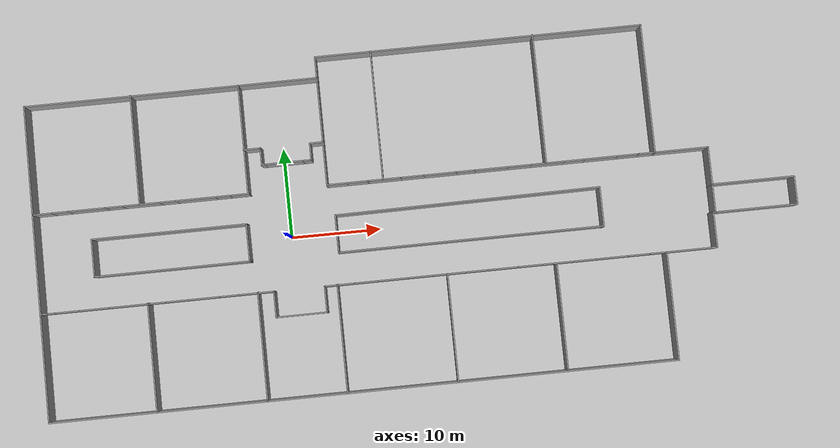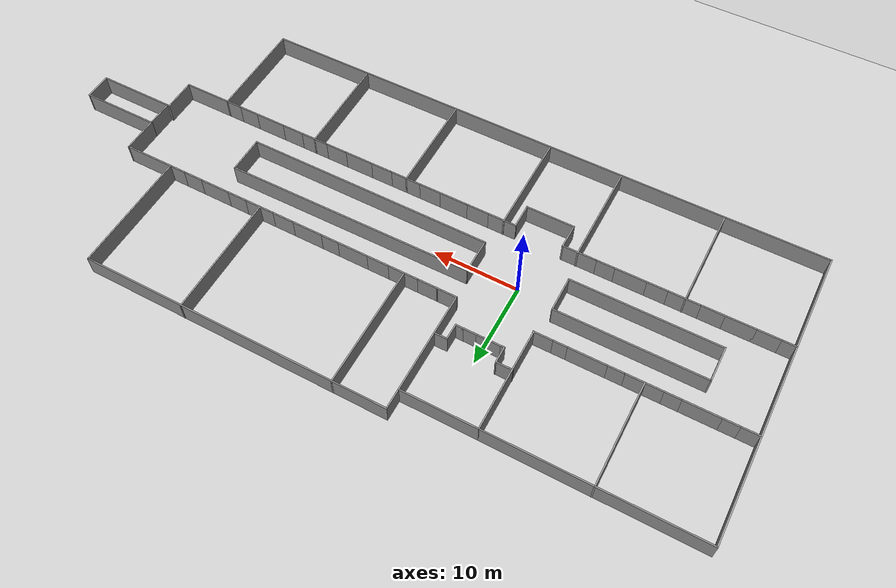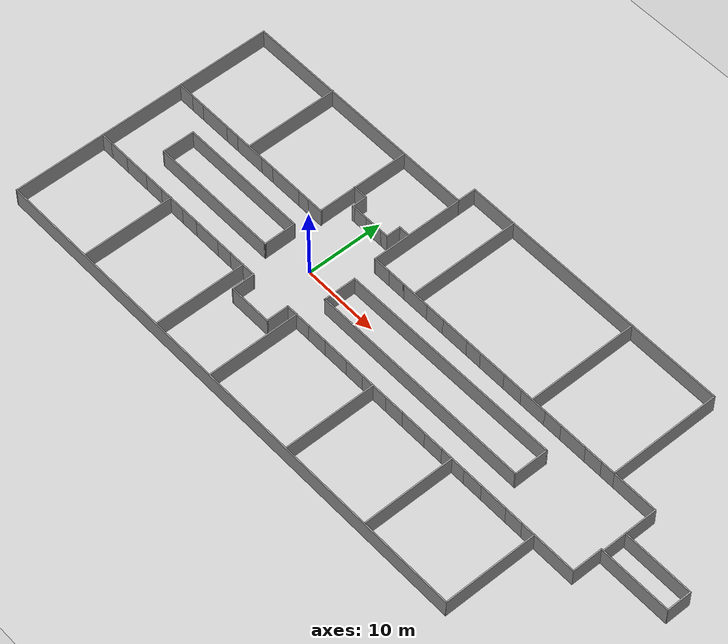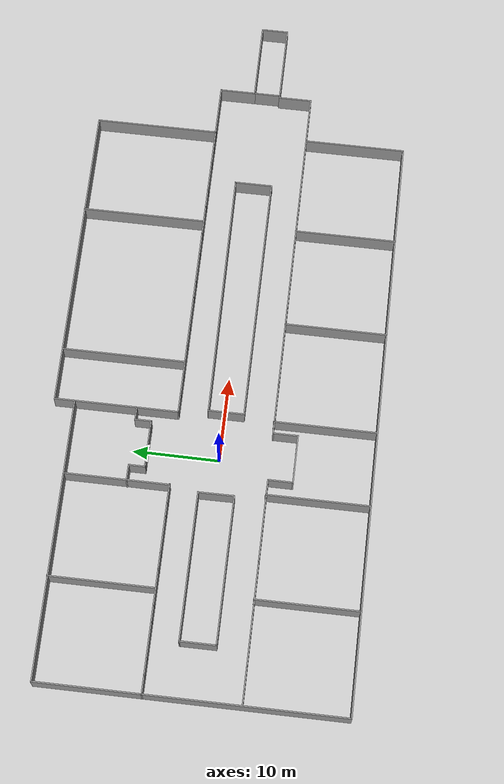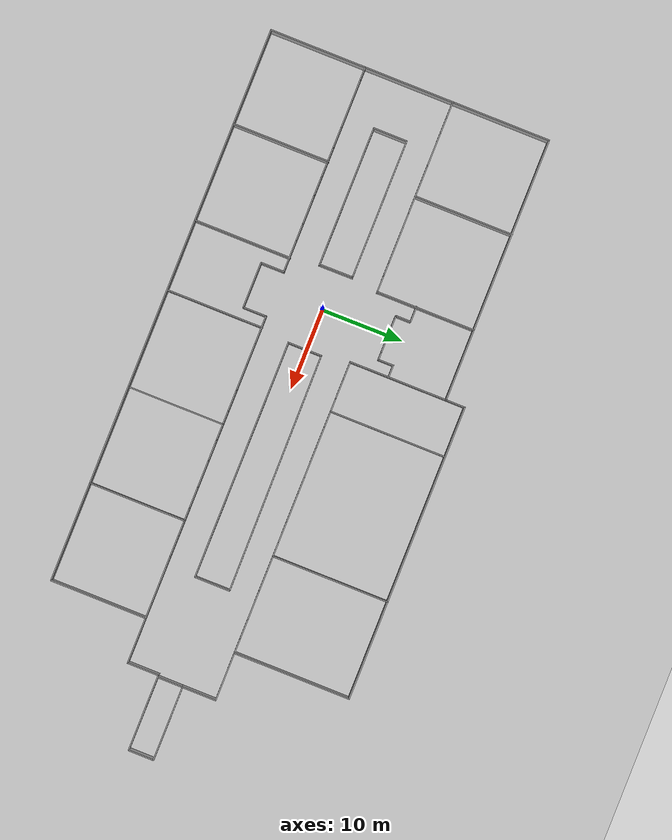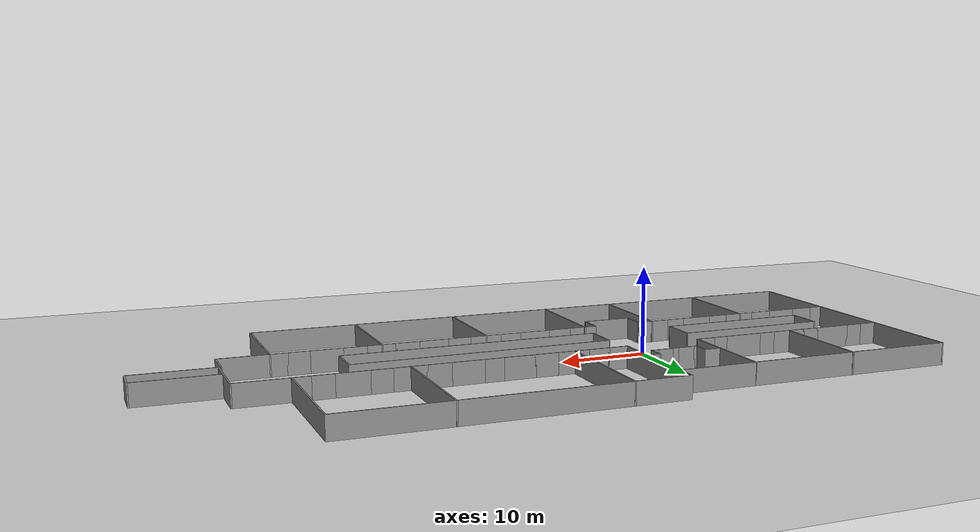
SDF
<sdf version="1.7">
 <world name="default">
  <light name="sun" type="directional">
   <pose>0 0 10 0 -0 0</pose>
   <diffuse>0.8 0.8 0.8 1</diffuse>
   <specular>0.2 0.2 0.2 1</specular>
   <attenuation>
    <range>1000</range>
    <constant>0.9</constant>
    <linear>0.01</linear>
    <quadratic>0.001</quadratic>
   </attenuation>
   <direction>-0.5 0.1 -0.9</direction>
   <spot><inner_angle>0</inner_angle><outer_angle>0</outer_angle><falloff>0</falloff></spot>
  </light>
  <model name="ground_plane">
   <static>1</static>
   <link name="link">
    <collision name="collision">
     <geometry><plane><normal>0 0 1</normal><size>100 100</size></plane></geometry>
     <surface><friction><ode><mu>100</mu><mu2>50</mu2></ode></friction></surface>
    </collision>
    <visual name="visual">
     <cast_shadows>0</cast_shadows>
     <geometry><plane><normal>0 0 1</normal><size>100 100</size></plane></geometry>
     <material>
      <script><uri>file://media/materials/scripts/gazebo.material</uri><name>Gazebo/Grey</name></script>
     </material>
    </visual>
   </link>
  </model>
  <gravity>0 0 -9.8</gravity>
  <magnetic_field>6e-06 2.3e-05 -4.2e-05</magnetic_field>
  <atmosphere type="adiabatic"/>
  <physics type="ode">
   <max_step_size>0.001</max_step_size>
   <real_time_factor>1</real_time_factor>
   <real_time_update_rate>1000</real_time_update_rate>
  </physics>
  <scene><ambient>0.4 0.4 0.4 1</ambient><background>0.7 0.7 0.7 1</background><shadows>1</shadows></scene>
  <audio><device>default</device></audio>
  <spherical_coordinates>
   <surface_model>EARTH_WGS84</surface_model>
   <latitude_deg>0</latitude_deg>
   <longitude_deg>0</longitude_deg>
   <elevation>0</elevation>
   <heading_deg>0</heading_deg>
  </spherical_coordinates>
  <model name="302_3f_hallway_c">
   <pose>14 1 0 0 -0 0</pose>
   <link name="Wall_0">
    <collision name="Wall_0_Collision">
     <geometry><box><size>2.25 0.15 2.5</size></box></geometry>
     <pose>0 0 1.25 0 -0 0</pose>
    </collision>
    <visual name="Wall_0_Visual">
     <pose>0 0 1.25 0 -0 0</pose>
     <geometry><box><size>2.25 0.15 2.5</size></box></geometry>
     <material>
      <script><uri>file://media/materials/scripts/gazebo.material</uri><name>Gazebo/Grey</name></script>
      <ambient>1 1 1 1</ambient>
     </material>
     <meta><layer>0</layer></meta>
    </visual>
    <pose>-19.175 4.17518 0 0 -0 3.14159</pose>
   </link>
   <link name="Wall_1">
    <collision name="Wall_1_Collision">
     <geometry><box><size>1.75 0.15 2.5</size></box></geometry>
     <pose>0 0 1.25 0 -0 0</pose>
    </collision>
    <visual name="Wall_1_Visual">
     <pose>0 0 1.25 0 -0 0</pose>
     <geometry><box><size>1.75 0.15 2.5</size></box></geometry>
     <material>
      <script><uri>file://media/materials/scripts/gazebo.material</uri><name>Gazebo/Grey</name></script>
      <ambient>1 1 1 1</ambient>
     </material>
     <meta><layer>0</layer></meta>
    </visual>
    <pose>-21.025 4.17518 0 0 -0 3.14159</pose>
   </link>
   <link name="Wall_10">
    <collision name="Wall_10_Collision">
     <geometry><box><size>24 0.15 2.5</size></box></geometry>
     <pose>0 0 1.25 0 -0 0</pose>
    </collision>
    <visual name="Wall_10_Visual">
     <pose>0 0 1.25 0 -0 0</pose>
     <geometry><box><size>24 0.15 2.5</size></box></geometry>
     <material>
      <script><uri>file://media/materials/scripts/gazebo.material</uri><name>Gazebo/Grey</name></script>
      <ambient>1 1 1 1</ambient>
     </material>
     <meta><layer>0</layer></meta>
    </visual>
    <pose>-30.1 16.2752 0 0 -0 0</pose>
   </link>
   <link name="Wall_100">
    <collision name="Wall_100_Collision">
     <geometry><box><size>2 0.15 2.5</size></box></geometry>
     <pose>0 0 1.25 0 -0 0</pose>
    </collision>
    <visual name="Wall_100_Visual">
     <pose>0 0 1.25 0 -0 0</pose>
     <geometry><box><size>2 0.15 2.5</size></box></geometry>
     <material>
      <script><uri>file://media/materials/scripts/gazebo.material</uri><name>Gazebo/Grey</name></script>
      <ambient>1 1 1 1</ambient>
     </material>
     <meta><layer>0</layer></meta>
    </visual>
    <pose>-10.8738 8.1512 0 0 -0 1.5708</pose>
   </link>
   <link name="Wall_101">
    <collision name="Wall_101_Collision">
     <geometry><box><size>1.5 0.15 2.5</size></box></geometry>
     <pose>0 0 1.25 0 -0 0</pose>
    </collision>
    <visual name="Wall_101_Visual">
     <pose>0 0 1.25 0 -0 0</pose>
     <geometry><box><size>1.5 0.15 2.5</size></box></geometry>
     <material>
      <script><uri>file://media/materials/scripts/gazebo.material</uri><name>Gazebo/Grey</name></script>
      <ambient>1 1 1 1</ambient>
     </material>
     <meta><layer>0</layer></meta>
    </visual>
    <pose>-10.1988 9.0762 0 0 -0 0</pose>
   </link>
   <link name="Wall_105">
    <collision name="Wall_105_Collision">
     <geometry><box><size>4.26858 0.15 2.5</size></box></geometry>
     <pose>0 0 1.25 0 -0 0</pose>
    </collision>
    <visual name="Wall_105_Visual">
     <pose>0 0 1.25 0 -0 0</pose>
     <geometry><box><size>4.26858 0.15 2.5</size></box></geometry>
     <material>
      <script><uri>file://media/materials/scripts/gazebo.material</uri><name>Gazebo/Grey</name></script>
      <ambient>1 1 1 1</ambient>
     </material>
     <meta><layer>0</layer></meta>
    </visual>
    <pose>-35.784 -1.20336 0 0 -0 -1.5708</pose>
   </link>
   <link name="Wall_106">
    <collision name="Wall_106_Collision">
     <geometry><box><size>17.25 0.15 2.5</size></box></geometry>
     <pose>0 0 1.25 0 -0 0</pose>
    </collision>
    <visual name="Wall_106_Visual">
     <pose>0 0 1.25 0 -0 0</pose>
     <geometry><box><size>17.25 0.15 2.5</size></box></geometry>
     <material>
      <script><uri>file://media/materials/scripts/gazebo.material</uri><name>Gazebo/Grey</name></script>
      <ambient>1 1 1 1</ambient>
     </material>
     <meta><layer>0</layer></meta>
    </visual>
    <pose>-27.2042 -3.2626 0 0 -0 0</pose>
   </link>
   <link name="Wall_109">
    <collision name="Wall_109_Collision">
     <geometry><box><size>17.25 0.15 2.5</size></box></geometry>
     <pose>0 0 1.25 0 -0 0</pose>
    </collision>
    <visual name="Wall_109_Visual">
     <pose>0 0 1.25 0 -0 0</pose>
     <geometry><box><size>17.25 0.15 2.5</size></box></geometry>
     <material>
      <script><uri>file://media/materials/scripts/gazebo.material</uri><name>Gazebo/Grey</name></script>
      <ambient>1 1 1 1</ambient>
     </material>
     <meta><layer>0</layer></meta>
    </visual>
    <pose>-27.234 0.855878 0 0 -0 0</pose>
   </link>
   <link name="Wall_11">
    <collision name="Wall_11_Collision">
     <geometry><box><size>12.25 0.15 2.5</size></box></geometry>
     <pose>0 0 1.25 0 -0 0</pose>
    </collision>
    <visual name="Wall_11_Visual">
     <pose>0 0 1.25 0 -0 0</pose>
     <geometry><box><size>12.25 0.15 2.5</size></box></geometry>
     <material>
      <script><uri>file://media/materials/scripts/gazebo.material</uri><name>Gazebo/Grey</name></script>
      <ambient>1 1 1 1</ambient>
     </material>
     <meta><layer>0</layer></meta>
    </visual>
    <pose>-18.175 10.2252 0 0 -0 -1.5708</pose>
   </link>
   <link name="Wall_110">
    <collision name="Wall_110_Collision">
     <geometry><box><size>4.26858 0.15 2.5</size></box></geometry>
     <pose>0 0 1.25 0 -0 0</pose>
    </collision>
    <visual name="Wall_110_Visual">
     <pose>0 0 1.25 0 -0 0</pose>
     <geometry><box><size>4.26858 0.15 2.5</size></box></geometry>
     <material>
      <script><uri>file://media/materials/scripts/gazebo.material</uri><name>Gazebo/Grey</name></script>
      <ambient>1 1 1 1</ambient>
     </material>
     <meta><layer>0</layer></meta>
    </visual>
    <pose>-18.6691 -1.20336 0 0 -0 -1.56355</pose>
   </link>
   <link name="Wall_113">
    <collision name="Wall_113_Collision">
     <geometry><box><size>29.5 0.15 2.5</size></box></geometry>
     <pose>0 0 1.25 0 -0 0</pose>
    </collision>
    <visual name="Wall_113_Visual">
     <pose>0 0 1.25 0 -0 0</pose>
     <geometry><box><size>29.5 0.15 2.5</size></box></geometry>
     <material>
      <script><uri>file://media/materials/scripts/gazebo.material</uri><name>Gazebo/Grey</name></script>
      <ambient>1 1 1 1</ambient>
     </material>
     <meta><layer>0</layer></meta>
    </visual>
    <pose>5.84097 0.961874 0 0 -0 0.007223</pose>
   </link>
   <link name="Wall_114">
    <collision name="Wall_114_Collision">
     <geometry><box><size>4.5 0.15 2.5</size></box></geometry>
     <pose>0 0 1.25 0 -0 0</pose>
    </collision>
    <visual name="Wall_114_Visual">
     <pose>0 0 1.25 0 -0 0</pose>
     <geometry><box><size>4.5 0.15 2.5</size></box></geometry>
     <material>
      <script><uri>file://media/materials/scripts/gazebo.material</uri><name>Gazebo/Grey</name></script>
      <ambient>1 1 1 1</ambient>
     </material>
     <meta><layer>0</layer></meta>
    </visual>
    <pose>20.516 -1.11561 0 0 -0 -1.5708</pose>
   </link>
   <link name="Wall_118">
    <collision name="Wall_118_Collision">
     <geometry><box><size>29.5 0.15 2.5</size></box></geometry>
     <pose>0 0 1.25 0 -0 0</pose>
    </collision>
    <visual name="Wall_118_Visual">
     <pose>0 0 1.25 0 -0 0</pose>
     <geometry><box><size>29.5 0.15 2.5</size></box></geometry>
     <material>
      <script><uri>file://media/materials/scripts/gazebo.material</uri><name>Gazebo/Grey</name></script>
      <ambient>1 1 1 1</ambient>
     </material>
     <meta><layer>0</layer></meta>
    </visual>
    <pose>5.84097 -3.2626 0 0 -0 0</pose>
   </link>
   <link name="Wall_120">
    <collision name="Wall_120_Collision">
     <geometry><box><size>4.26847 0.15 2.5</size></box></geometry>
     <pose>0 0 1.25 0 -0 0</pose>
    </collision>
    <visual name="Wall_120_Visual">
     <pose>0 0 1.25 0 -0 0</pose>
     <geometry><box><size>4.26847 0.15 2.5</size></box></geometry>
     <material>
      <script><uri>file://media/materials/scripts/gazebo.material</uri><name>Gazebo/Grey</name></script>
      <ambient>1 1 1 1</ambient>
     </material>
     <meta><layer>0</layer></meta>
    </visual>
    <pose>-8.83403 -1.20336 0 0 -0 -1.5708</pose>
   </link>
   <link name="Wall_13">
    <collision name="Wall_13_Collision">
     <geometry><box><size>8.91051 0.15 2.5</size></box></geometry>
     <pose>0 0 1.25 0 -0 0</pose>
    </collision>
    <visual name="Wall_13_Visual">
     <pose>0 0 1.25 0 -0 0</pose>
     <geometry><box><size>8.91051 0.15 2.5</size></box></geometry>
     <material>
      <script><uri>file://media/materials/scripts/gazebo.material</uri><name>Gazebo/Grey</name></script>
      <ambient>1 1 1 1</ambient>
     </material>
     <meta><layer>0</layer></meta>
    </visual>
    <pose>-13.7946 16.2804 0 0 -0 0.001183</pose>
   </link>
   <link name="Wall_14">
    <collision name="Wall_14_Collision">
     <geometry><box><size>2.49 0.15 2.5</size></box></geometry>
     <pose>0 0 1.25 0 -0 0</pose>
    </collision>
    <visual name="Wall_14_Visual">
     <pose>0 0 1.25 0 -0 0</pose>
     <geometry><box><size>2.49 0.15 2.5</size></box></geometry>
     <material>
      <script><uri>file://media/materials/scripts/gazebo.material</uri><name>Gazebo/Grey</name></script>
      <ambient>1 1 1 1</ambient>
     </material>
     <meta><layer>0</layer></meta>
    </visual>
    <pose>-9.41421 17.4555 0 0 -0 1.5708</pose>
   </link>
   <link name="Wall_15">
    <collision name="Wall_15_Collision">
     <geometry><box><size>36.5892 0.15 2.5</size></box></geometry>
     <pose>0 0 1.25 0 -0 0</pose>
    </collision>
    <visual name="Wall_15_Visual">
     <pose>0 0 1.25 0 -0 0</pose>
     <geometry><box><size>36.5892 0.15 2.5</size></box></geometry>
     <material>
      <script><uri>file://media/materials/scripts/gazebo.material</uri><name>Gazebo/Grey</name></script>
      <ambient>1 1 1 1</ambient>
     </material>
     <meta><layer>0</layer></meta>
    </visual>
    <pose>8.80539 18.6254 0 0 -0 -1e-05</pose>
   </link>
   <link name="Wall_16">
    <collision name="Wall_16_Collision">
     <geometry><box><size>14.5 0.15 2.5</size></box></geometry>
     <pose>0 0 1.25 0 -0 0</pose>
    </collision>
    <visual name="Wall_16_Visual">
     <pose>0 0 1.25 0 -0 0</pose>
     <geometry><box><size>14.5 0.15 2.5</size></box></geometry>
     <material>
      <script><uri>file://media/materials/scripts/gazebo.material</uri><name>Gazebo/Grey</name></script>
      <ambient>1 1 1 1</ambient>
     </material>
     <meta><layer>0</layer></meta>
    </visual>
    <pose>27.025 11.4502 0 0 -0 -1.5708</pose>
   </link>
   <link name="Wall_17">
    <collision name="Wall_17_Collision">
     <geometry><box><size>2 0.15 2.5</size></box></geometry>
     <pose>0 0 1.25 0 -0 0</pose>
    </collision>
    <visual name="Wall_17_Visual">
     <pose>0 0 1.25 0 -0 0</pose>
     <geometry><box><size>2 0.15 2.5</size></box></geometry>
     <material>
      <script><uri>file://media/materials/scripts/gazebo.material</uri><name>Gazebo/Grey</name></script>
      <ambient>1 1 1 1</ambient>
     </material>
     <meta><layer>0</layer></meta>
    </visual>
    <pose>26.1 4.27518 0 0 -0 3.14159</pose>
   </link>
   <link name="Wall_18">
    <collision name="Wall_18_Collision">
     <geometry><box><size>2.5 0.15 2.5</size></box></geometry>
     <pose>0 0 1.25 0 -0 0</pose>
    </collision>
    <visual name="Wall_18_Visual">
     <pose>0 0 1.25 0 -0 0</pose>
     <geometry><box><size>2.5 0.15 2.5</size></box></geometry>
     <material>
      <script><uri>file://media/materials/scripts/gazebo.material</uri><name>Gazebo/Grey</name></script>
      <ambient>1 1 1 1</ambient>
     </material>
     <meta><layer>0</layer></meta>
    </visual>
    <pose>24 4.27518 0 0 -0 3.14159</pose>
   </link>
   <link name="Wall_19">
    <collision name="Wall_19_Collision">
     <geometry><box><size>3.75 0.15 2.5</size></box></geometry>
     <pose>0 0 1.25 0 -0 0</pose>
    </collision>
    <visual name="Wall_19_Visual">
     <pose>0 0 1.25 0 -0 0</pose>
     <geometry><box><size>3.75 0.15 2.5</size></box></geometry>
     <material>
      <script><uri>file://media/materials/scripts/gazebo.material</uri><name>Gazebo/Grey</name></script>
      <ambient>1 1 1 1</ambient>
     </material>
     <meta><layer>0</layer></meta>
    </visual>
    <pose>21.025 4.27518 0 0 -0 3.14159</pose>
   </link>
   <link name="Wall_2">
    <collision name="Wall_2_Collision">
     <geometry><box><size>4.5 0.15 2.5</size></box></geometry>
     <pose>0 0 1.25 0 -0 0</pose>
    </collision>
    <visual name="Wall_2_Visual">
     <pose>0 0 1.25 0 -0 0</pose>
     <geometry><box><size>4.5 0.15 2.5</size></box></geometry>
     <material>
      <script><uri>file://media/materials/scripts/gazebo.material</uri><name>Gazebo/Grey</name></script>
      <ambient>1 1 1 1</ambient>
     </material>
     <meta><layer>0</layer></meta>
    </visual>
    <pose>-24 4.17518 0 0 -0 3.14159</pose>
   </link>
   <link name="Wall_20">
    <collision name="Wall_20_Collision">
     <geometry><box><size>2.5 0.15 2.5</size></box></geometry>
     <pose>0 0 1.25 0 -0 0</pose>
    </collision>
    <visual name="Wall_20_Visual">
     <pose>0 0 1.25 0 -0 0</pose>
     <geometry><box><size>2.5 0.15 2.5</size></box></geometry>
     <material>
      <script><uri>file://media/materials/scripts/gazebo.material</uri><name>Gazebo/Grey</name></script>
      <ambient>1 1 1 1</ambient>
     </material>
     <meta><layer>0</layer></meta>
    </visual>
    <pose>18.05 4.27518 0 0 -0 3.14159</pose>
   </link>
   <link name="Wall_21">
    <collision name="Wall_21_Collision">
     <geometry><box><size>3.75 0.15 2.5</size></box></geometry>
     <pose>0 0 1.25 0 -0 0</pose>
    </collision>
    <visual name="Wall_21_Visual">
     <pose>0 0 1.25 0 -0 0</pose>
     <geometry><box><size>3.75 0.15 2.5</size></box></geometry>
     <material>
      <script><uri>file://media/materials/scripts/gazebo.material</uri><name>Gazebo/Grey</name></script>
      <ambient>1 1 1 1</ambient>
     </material>
     <meta><layer>0</layer></meta>
    </visual>
    <pose>15.075 4.27518 0 0 -0 3.14159</pose>
   </link>
   <link name="Wall_22">
    <collision name="Wall_22_Collision">
     <geometry><box><size>2.75 0.15 2.5</size></box></geometry>
     <pose>0 0 1.25 0 -0 0</pose>
    </collision>
    <visual name="Wall_22_Visual">
     <pose>0 0 1.25 0 -0 0</pose>
     <geometry><box><size>2.75 0.15 2.5</size></box></geometry>
     <material>
      <script><uri>file://media/materials/scripts/gazebo.material</uri><name>Gazebo/Grey</name></script>
      <ambient>1 1 1 1</ambient>
     </material>
     <meta><layer>0</layer></meta>
    </visual>
    <pose>11.975 4.27518 0 0 -0 3.14159</pose>
   </link>
   <link name="Wall_23">
    <collision name="Wall_23_Collision">
     <geometry><box><size>3.75 0.15 2.5</size></box></geometry>
     <pose>0 0 1.25 0 -0 0</pose>
    </collision>
    <visual name="Wall_23_Visual">
     <pose>0 0 1.25 0 -0 0</pose>
     <geometry><box><size>3.75 0.15 2.5</size></box></geometry>
     <material>
      <script><uri>file://media/materials/scripts/gazebo.material</uri><name>Gazebo/Grey</name></script>
      <ambient>1 1 1 1</ambient>
     </material>
     <meta><layer>0</layer></meta>
    </visual>
    <pose>8.875 4.27518 0 0 -0 3.14159</pose>
   </link>
   <link name="Wall_24">
    <collision name="Wall_24_Collision">
     <geometry><box><size>2.25 0.15 2.5</size></box></geometry>
     <pose>0 0 1.25 0 -0 0</pose>
    </collision>
    <visual name="Wall_24_Visual">
     <pose>0 0 1.25 0 -0 0</pose>
     <geometry><box><size>2.25 0.15 2.5</size></box></geometry>
     <material>
      <script><uri>file://media/materials/scripts/gazebo.material</uri><name>Gazebo/Grey</name></script>
      <ambient>1 1 1 1</ambient>
     </material>
     <meta><layer>0</layer></meta>
    </visual>
    <pose>6.025 4.27518 0 0 -0 3.14159</pose>
   </link>
   <link name="Wall_25">
    <collision name="Wall_25_Collision">
     <geometry><box><size>3.75 0.15 2.5</size></box></geometry>
     <pose>0 0 1.25 0 -0 0</pose>
    </collision>
    <visual name="Wall_25_Visual">
     <pose>0 0 1.25 0 -0 0</pose>
     <geometry><box><size>3.75 0.15 2.5</size></box></geometry>
     <material>
      <script><uri>file://media/materials/scripts/gazebo.material</uri><name>Gazebo/Grey</name></script>
      <ambient>1 1 1 1</ambient>
     </material>
     <meta><layer>0</layer></meta>
    </visual>
    <pose>3.175 4.27518 0 0 -0 3.14159</pose>
   </link>
   <link name="Wall_26">
    <collision name="Wall_26_Collision">
     <geometry><box><size>2.75 0.15 2.5</size></box></geometry>
     <pose>0 0 1.25 0 -0 0</pose>
    </collision>
    <visual name="Wall_26_Visual">
     <pose>0 0 1.25 0 -0 0</pose>
     <geometry><box><size>2.75 0.15 2.5</size></box></geometry>
     <material>
      <script><uri>file://media/materials/scripts/gazebo.material</uri><name>Gazebo/Grey</name></script>
      <ambient>1 1 1 1</ambient>
     </material>
     <meta><layer>0</layer></meta>
    </visual>
    <pose>0.075 4.27518 0 0 -0 3.14159</pose>
   </link>
   <link name="Wall_27">
    <collision name="Wall_27_Collision">
     <geometry><box><size>3.75 0.15 2.5</size></box></geometry>
     <pose>0 0 1.25 0 -0 0</pose>
    </collision>
    <visual name="Wall_27_Visual">
     <pose>0 0 1.25 0 -0 0</pose>
     <geometry><box><size>3.75 0.15 2.5</size></box></geometry>
     <material>
      <script><uri>file://media/materials/scripts/gazebo.material</uri><name>Gazebo/Grey</name></script>
      <ambient>1 1 1 1</ambient>
     </material>
     <meta><layer>0</layer></meta>
    </visual>
    <pose>-3.025 4.27518 0 0 -0 3.14159</pose>
   </link>
   <link name="Wall_28">
    <collision name="Wall_28_Collision">
     <geometry><box><size>2.5 0.15 2.5</size></box></geometry>
     <pose>0 0 1.25 0 -0 0</pose>
    </collision>
    <visual name="Wall_28_Visual">
     <pose>0 0 1.25 0 -0 0</pose>
     <geometry><box><size>2.5 0.15 2.5</size></box></geometry>
     <material>
      <script><uri>file://media/materials/scripts/gazebo.material</uri><name>Gazebo/Grey</name></script>
      <ambient>1 1 1 1</ambient>
     </material>
     <meta><layer>0</layer></meta>
    </visual>
    <pose>-6.00011 4.27536 0 0 -0 3.14144</pose>
   </link>
   <link name="Wall_3">
    <collision name="Wall_3_Collision">
     <geometry><box><size>2 0.15 2.5</size></box></geometry>
     <pose>0 0 1.25 0 -0 0</pose>
    </collision>
    <visual name="Wall_3_Visual">
     <pose>0 0 1.25 0 -0 0</pose>
     <geometry><box><size>2 0.15 2.5</size></box></geometry>
     <material>
      <script><uri>file://media/materials/scripts/gazebo.material</uri><name>Gazebo/Grey</name></script>
      <ambient>1 1 1 1</ambient>
     </material>
     <meta><layer>0</layer></meta>
    </visual>
    <pose>-27.1 4.17518 0 0 -0 3.14159</pose>
   </link>
   <link name="Wall_32">
    <collision name="Wall_32_Collision">
     <geometry><box><size>2.38924 0.15 2.5</size></box></geometry>
     <pose>0 0 1.25 0 -0 0</pose>
    </collision>
    <visual name="Wall_32_Visual">
     <pose>0 0 1.25 0 -0 0</pose>
     <geometry><box><size>2.38924 0.15 2.5</size></box></geometry>
     <material>
      <script><uri>file://media/materials/scripts/gazebo.material</uri><name>Gazebo/Grey</name></script>
      <ambient>1 1 1 1</ambient>
     </material>
     <meta><layer>0</layer></meta>
    </visual>
    <pose>-8.29471 4.27554 0 0 -0 3.14159</pose>
   </link>
   <link name="Wall_33">
    <collision name="Wall_33_Collision">
     <geometry><box><size>12.16 0.15 2.5</size></box></geometry>
     <pose>0 0 1.25 0 -0 0</pose>
    </collision>
    <visual name="Wall_33_Visual">
     <pose>0 0 1.25 0 -0 0</pose>
     <geometry><box><size>12.16 0.15 2.5</size></box></geometry>
     <material>
      <script><uri>file://media/materials/scripts/gazebo.material</uri><name>Gazebo/Grey</name></script>
      <ambient>1 1 1 1</ambient>
     </material>
     <meta><layer>0</layer></meta>
    </visual>
    <pose>-9.41421 10.2805 0 0 -0 1.5708</pose>
   </link>
   <link name="Wall_36">
    <collision name="Wall_36_Collision">
     <geometry><box><size>14.5 0.15 2.5</size></box></geometry>
     <pose>0 0 1.25 0 -0 0</pose>
    </collision>
    <visual name="Wall_36_Visual">
     <pose>0 0 1.25 0 -0 0</pose>
     <geometry><box><size>14.5 0.15 2.5</size></box></geometry>
     <material>
      <script><uri>file://media/materials/scripts/gazebo.material</uri><name>Gazebo/Grey</name></script>
      <ambient>1 1 1 1</ambient>
     </material>
     <meta><layer>0</layer></meta>
    </visual>
    <pose>-3.20664 11.4573 0 0 -0 1.5708</pose>
   </link>
   <link name="Wall_38">
    <collision name="Wall_38_Collision">
     <geometry><box><size>23 0.15 2.5</size></box></geometry>
     <pose>0 0 1.25 0 -0 0</pose>
    </collision>
    <visual name="Wall_38_Visual">
     <pose>0 0 1.25 0 -0 0</pose>
     <geometry><box><size>23 0.15 2.5</size></box></geometry>
     <material>
      <script><uri>file://media/materials/scripts/gazebo.material</uri><name>Gazebo/Grey</name></script>
      <ambient>1 1 1 1</ambient>
     </material>
     <meta><layer>0</layer></meta>
    </visual>
    <pose>-42.025 -7.24982 0 0 -0 -1.5708</pose>
   </link>
   <link name="Wall_39">
    <collision name="Wall_39_Collision">
     <geometry><box><size>69.25 0.15 2.5</size></box></geometry>
     <pose>0 0 1.25 0 -0 0</pose>
    </collision>
    <visual name="Wall_39_Visual">
     <pose>0 0 1.25 0 -0 0</pose>
     <geometry><box><size>69.25 0.15 2.5</size></box></geometry>
     <material>
      <script><uri>file://media/materials/scripts/gazebo.material</uri><name>Gazebo/Grey</name></script>
      <ambient>1 1 1 1</ambient>
     </material>
     <meta><layer>0</layer></meta>
    </visual>
    <pose>-7.475 -18.6748 0 0 -0 0</pose>
   </link>
   <link name="Wall_4">
    <collision name="Wall_4_Collision">
     <geometry><box><size>4.25 0.15 2.5</size></box></geometry>
     <pose>0 0 1.25 0 -0 0</pose>
    </collision>
    <visual name="Wall_4_Visual">
     <pose>0 0 1.25 0 -0 0</pose>
     <geometry><box><size>4.25 0.15 2.5</size></box></geometry>
     <material>
      <script><uri>file://media/materials/scripts/gazebo.material</uri><name>Gazebo/Grey</name></script>
      <ambient>1 1 1 1</ambient>
     </material>
     <meta><layer>0</layer></meta>
    </visual>
    <pose>-30.075 4.17518 0 0 -0 3.14159</pose>
   </link>
   <link name="Wall_40">
    <collision name="Wall_40_Collision">
     <geometry><box><size>12 0.15 2.5</size></box></geometry>
     <pose>0 0 1.25 0 -0 0</pose>
    </collision>
    <visual name="Wall_40_Visual">
     <pose>0 0 1.25 0 -0 0</pose>
     <geometry><box><size>12 0.15 2.5</size></box></geometry>
     <material>
      <script><uri>file://media/materials/scripts/gazebo.material</uri><name>Gazebo/Grey</name></script>
      <ambient>1 1 1 1</ambient>
     </material>
     <meta><layer>0</layer></meta>
    </visual>
    <pose>27.075 -12.7498 0 0 -0 1.5708</pose>
   </link>
   <link name="Wall_41">
    <collision name="Wall_41_Collision">
     <geometry><box><size>5.75 0.15 2.5</size></box></geometry>
     <pose>0 0 1.25 0 -0 0</pose>
    </collision>
    <visual name="Wall_41_Visual">
     <pose>0 0 1.25 0 -0 0</pose>
     <geometry><box><size>5.75 0.15 2.5</size></box></geometry>
     <material>
      <script><uri>file://media/materials/scripts/gazebo.material</uri><name>Gazebo/Grey</name></script>
      <ambient>1 1 1 1</ambient>
     </material>
     <meta><layer>0</layer></meta>
    </visual>
    <pose>29.875 -6.82482 0 0 -0 0</pose>
   </link>
   <link name="Wall_42">
    <collision name="Wall_42_Collision">
     <geometry><box><size>4 0.15 2.5</size></box></geometry>
     <pose>0 0 1.25 0 -0 0</pose>
    </collision>
    <visual name="Wall_42_Visual">
     <pose>0 0 1.25 0 -0 0</pose>
     <geometry><box><size>4 0.15 2.5</size></box></geometry>
     <material>
      <script><uri>file://media/materials/scripts/gazebo.material</uri><name>Gazebo/Grey</name></script>
      <ambient>1 1 1 1</ambient>
     </material>
     <meta><layer>0</layer></meta>
    </visual>
    <pose>32.675 -4.89982 0 0 -0 1.5708</pose>
   </link>
   <link name="Wall_43">
    <collision name="Wall_43_Collision">
     <geometry><box><size>9.5 0.15 2.5</size></box></geometry>
     <pose>0 0 1.25 0 -0 0</pose>
    </collision>
    <visual name="Wall_43_Visual">
     <pose>0 0 1.25 0 -0 0</pose>
     <geometry><box><size>9.5 0.15 2.5</size></box></geometry>
     <material>
      <script><uri>file://media/materials/scripts/gazebo.material</uri><name>Gazebo/Grey</name></script>
      <ambient>1 1 1 1</ambient>
     </material>
     <meta><layer>0</layer></meta>
    </visual>
    <pose>37.35 -2.97482 0 0 -0 0</pose>
   </link>
   <link name="Wall_44">
    <collision name="Wall_44_Collision">
     <geometry><box><size>3.25 0.15 2.5</size></box></geometry>
     <pose>0 0 1.25 0 -0 0</pose>
    </collision>
    <visual name="Wall_44_Visual">
     <pose>0 0 1.25 0 -0 0</pose>
     <geometry><box><size>3.25 0.15 2.5</size></box></geometry>
     <material>
      <script><uri>file://media/materials/scripts/gazebo.material</uri><name>Gazebo/Grey</name></script>
      <ambient>1 1 1 1</ambient>
     </material>
     <meta><layer>0</layer></meta>
    </visual>
    <pose>42.025 -1.42482 0 0 -0 1.5708</pose>
   </link>
   <link name="Wall_45">
    <collision name="Wall_45_Collision">
     <geometry><box><size>9.25 0.15 2.5</size></box></geometry>
     <pose>0 0 1.25 0 -0 0</pose>
    </collision>
    <visual name="Wall_45_Visual">
     <pose>0 0 1.25 0 -0 0</pose>
     <geometry><box><size>9.25 0.15 2.5</size></box></geometry>
     <material>
      <script><uri>file://media/materials/scripts/gazebo.material</uri><name>Gazebo/Grey</name></script>
      <ambient>1 1 1 1</ambient>
     </material>
     <meta><layer>0</layer></meta>
    </visual>
    <pose>37.4749 0.12536 0 0 -0 3.14155</pose>
   </link>
   <link name="Wall_48">
    <collision name="Wall_48_Collision">
     <geometry><box><size>6.04979 0.15 2.5</size></box></geometry>
     <pose>0 0 1.25 0 -0 0</pose>
    </collision>
    <visual name="Wall_48_Visual">
     <pose>0 0 1.25 0 -0 0</pose>
     <geometry><box><size>6.04979 0.15 2.5</size></box></geometry>
     <material>
      <script><uri>file://media/materials/scripts/gazebo.material</uri><name>Gazebo/Grey</name></script>
      <ambient>1 1 1 1</ambient>
     </material>
     <meta><layer>0</layer></meta>
    </visual>
    <pose>29.9749 4.27536 0 0 -0 6.2e-05</pose>
   </link>
   <link name="Wall_49">
    <collision name="Wall_49_Collision">
     <geometry><box><size>4.30036 0.15 2.5</size></box></geometry>
     <pose>0 0 1.25 0 -0 0</pose>
    </collision>
    <visual name="Wall_49_Visual">
     <pose>0 0 1.25 0 -0 0</pose>
     <geometry><box><size>4.30036 0.15 2.5</size></box></geometry>
     <material>
      <script><uri>file://media/materials/scripts/gazebo.material</uri><name>Gazebo/Grey</name></script>
      <ambient>1 1 1 1</ambient>
     </material>
     <meta><layer>0</layer></meta>
    </visual>
    <pose>32.9248 2.20054 0 0 -0 -1.5708</pose>
   </link>
   <link name="Wall_5">
    <collision name="Wall_5_Collision">
     <geometry><box><size>2 0.15 2.5</size></box></geometry>
     <pose>0 0 1.25 0 -0 0</pose>
    </collision>
    <visual name="Wall_5_Visual">
     <pose>0 0 1.25 0 -0 0</pose>
     <geometry><box><size>2 0.15 2.5</size></box></geometry>
     <material>
      <script><uri>file://media/materials/scripts/gazebo.material</uri><name>Gazebo/Grey</name></script>
      <ambient>1 1 1 1</ambient>
     </material>
     <meta><layer>0</layer></meta>
    </visual>
    <pose>-33.05 4.17518 0 0 -0 3.14159</pose>
   </link>
   <link name="Wall_51">
    <collision name="Wall_51_Collision">
     <geometry><box><size>2 0.15 2.5</size></box></geometry>
     <pose>0 0 1.25 0 -0 0</pose>
    </collision>
    <visual name="Wall_51_Visual">
     <pose>0 0 1.25 0 -0 0</pose>
     <geometry><box><size>2 0.15 2.5</size></box></geometry>
     <material>
      <script><uri>file://media/materials/scripts/gazebo.material</uri><name>Gazebo/Grey</name></script>
      <ambient>1 1 1 1</ambient>
     </material>
     <meta><layer>0</layer></meta>
    </visual>
    <pose>26.15 -6.82482 0 0 -0 3.14159</pose>
   </link>
   <link name="Wall_52">
    <collision name="Wall_52_Collision">
     <geometry><box><size>2.5 0.15 2.5</size></box></geometry>
     <pose>0 0 1.25 0 -0 0</pose>
    </collision>
    <visual name="Wall_52_Visual">
     <pose>0 0 1.25 0 -0 0</pose>
     <geometry><box><size>2.5 0.15 2.5</size></box></geometry>
     <material>
      <script><uri>file://media/materials/scripts/gazebo.material</uri><name>Gazebo/Grey</name></script>
      <ambient>1 1 1 1</ambient>
     </material>
     <meta><layer>0</layer></meta>
    </visual>
    <pose>24.05 -6.82482 0 0 -0 3.14159</pose>
   </link>
   <link name="Wall_53">
    <collision name="Wall_53_Collision">
     <geometry><box><size>3.75 0.15 2.5</size></box></geometry>
     <pose>0 0 1.25 0 -0 0</pose>
    </collision>
    <visual name="Wall_53_Visual">
     <pose>0 0 1.25 0 -0 0</pose>
     <geometry><box><size>3.75 0.15 2.5</size></box></geometry>
     <material>
      <script><uri>file://media/materials/scripts/gazebo.material</uri><name>Gazebo/Grey</name></script>
      <ambient>1 1 1 1</ambient>
     </material>
     <meta><layer>0</layer></meta>
    </visual>
    <pose>21.075 -6.82482 0 0 -0 3.14159</pose>
   </link>
   <link name="Wall_54">
    <collision name="Wall_54_Collision">
     <geometry><box><size>2.75 0.15 2.5</size></box></geometry>
     <pose>0 0 1.25 0 -0 0</pose>
    </collision>
    <visual name="Wall_54_Visual">
     <pose>0 0 1.25 0 -0 0</pose>
     <geometry><box><size>2.75 0.15 2.5</size></box></geometry>
     <material>
      <script><uri>file://media/materials/scripts/gazebo.material</uri><name>Gazebo/Grey</name></script>
      <ambient>1 1 1 1</ambient>
     </material>
     <meta><layer>0</layer></meta>
    </visual>
    <pose>17.975 -6.82482 0 0 -0 3.14159</pose>
   </link>
   <link name="Wall_55">
    <collision name="Wall_55_Collision">
     <geometry><box><size>3.5 0.15 2.5</size></box></geometry>
     <pose>0 0 1.25 0 -0 0</pose>
    </collision>
    <visual name="Wall_55_Visual">
     <pose>0 0 1.25 0 -0 0</pose>
     <geometry><box><size>3.5 0.15 2.5</size></box></geometry>
     <material>
      <script><uri>file://media/materials/scripts/gazebo.material</uri><name>Gazebo/Grey</name></script>
      <ambient>1 1 1 1</ambient>
     </material>
     <meta><layer>0</layer></meta>
    </visual>
    <pose>15 -6.82482 0 0 -0 3.14159</pose>
   </link>
   <link name="Wall_56">
    <collision name="Wall_56_Collision">
     <geometry><box><size>2.75 0.15 2.5</size></box></geometry>
     <pose>0 0 1.25 0 -0 0</pose>
    </collision>
    <visual name="Wall_56_Visual">
     <pose>0 0 1.25 0 -0 0</pose>
     <geometry><box><size>2.75 0.15 2.5</size></box></geometry>
     <material>
      <script><uri>file://media/materials/scripts/gazebo.material</uri><name>Gazebo/Grey</name></script>
      <ambient>1 1 1 1</ambient>
     </material>
     <meta><layer>0</layer></meta>
    </visual>
    <pose>12.025 -6.82482 0 0 -0 3.14159</pose>
   </link>
   <link name="Wall_57">
    <collision name="Wall_57_Collision">
     <geometry><box><size>3.5 0.15 2.5</size></box></geometry>
     <pose>0 0 1.25 0 -0 0</pose>
    </collision>
    <visual name="Wall_57_Visual">
     <pose>0 0 1.25 0 -0 0</pose>
     <geometry><box><size>3.5 0.15 2.5</size></box></geometry>
     <material>
      <script><uri>file://media/materials/scripts/gazebo.material</uri><name>Gazebo/Grey</name></script>
      <ambient>1 1 1 1</ambient>
     </material>
     <meta><layer>0</layer></meta>
    </visual>
    <pose>9.05 -6.82482 0 0 -0 3.14159</pose>
   </link>
   <link name="Wall_58">
    <collision name="Wall_58_Collision">
     <geometry><box><size>2.75 0.15 2.5</size></box></geometry>
     <pose>0 0 1.25 0 -0 0</pose>
    </collision>
    <visual name="Wall_58_Visual">
     <pose>0 0 1.25 0 -0 0</pose>
     <geometry><box><size>2.75 0.15 2.5</size></box></geometry>
     <material>
      <script><uri>file://media/materials/scripts/gazebo.material</uri><name>Gazebo/Grey</name></script>
      <ambient>1 1 1 1</ambient>
     </material>
     <meta><layer>0</layer></meta>
    </visual>
    <pose>6.075 -6.82482 0 0 -0 3.14159</pose>
   </link>
   <link name="Wall_59">
    <collision name="Wall_59_Collision">
     <geometry><box><size>3.75 0.15 2.5</size></box></geometry>
     <pose>0 0 1.25 0 -0 0</pose>
    </collision>
    <visual name="Wall_59_Visual">
     <pose>0 0 1.25 0 -0 0</pose>
     <geometry><box><size>3.75 0.15 2.5</size></box></geometry>
     <material>
      <script><uri>file://media/materials/scripts/gazebo.material</uri><name>Gazebo/Grey</name></script>
      <ambient>1 1 1 1</ambient>
     </material>
     <meta><layer>0</layer></meta>
    </visual>
    <pose>2.975 -6.82482 0 0 -0 3.14159</pose>
   </link>
   <link name="Wall_6">
    <collision name="Wall_6_Collision">
     <geometry><box><size>4.25 0.15 2.5</size></box></geometry>
     <pose>0 0 1.25 0 -0 0</pose>
    </collision>
    <visual name="Wall_6_Visual">
     <pose>0 0 1.25 0 -0 0</pose>
     <geometry><box><size>4.25 0.15 2.5</size></box></geometry>
     <material>
      <script><uri>file://media/materials/scripts/gazebo.material</uri><name>Gazebo/Grey</name></script>
      <ambient>1 1 1 1</ambient>
     </material>
     <meta><layer>0</layer></meta>
    </visual>
    <pose>-36.025 4.17518 0 0 -0 3.14159</pose>
   </link>
   <link name="Wall_60">
    <collision name="Wall_60_Collision">
     <geometry><box><size>2.75 0.15 2.5</size></box></geometry>
     <pose>0 0 1.25 0 -0 0</pose>
    </collision>
    <visual name="Wall_60_Visual">
     <pose>0 0 1.25 0 -0 0</pose>
     <geometry><box><size>2.75 0.15 2.5</size></box></geometry>
     <material>
      <script><uri>file://media/materials/scripts/gazebo.material</uri><name>Gazebo/Grey</name></script>
      <ambient>1 1 1 1</ambient>
     </material>
     <meta><layer>0</layer></meta>
    </visual>
    <pose>-0.125 -6.82482 0 0 -0 3.14159</pose>
   </link>
   <link name="Wall_61">
    <collision name="Wall_61_Collision">
     <geometry><box><size>3.5 0.15 2.5</size></box></geometry>
     <pose>0 0 1.25 0 -0 0</pose>
    </collision>
    <visual name="Wall_61_Visual">
     <pose>0 0 1.25 0 -0 0</pose>
     <geometry><box><size>3.5 0.15 2.5</size></box></geometry>
     <material>
      <script><uri>file://media/materials/scripts/gazebo.material</uri><name>Gazebo/Grey</name></script>
      <ambient>1 1 1 1</ambient>
     </material>
     <meta><layer>0</layer></meta>
    </visual>
    <pose>-3.1 -6.82482 0 0 -0 3.14159</pose>
   </link>
   <link name="Wall_62">
    <collision name="Wall_62_Collision">
     <geometry><box><size>2.75 0.15 2.5</size></box></geometry>
     <pose>0 0 1.25 0 -0 0</pose>
    </collision>
    <visual name="Wall_62_Visual">
     <pose>0 0 1.25 0 -0 0</pose>
     <geometry><box><size>2.75 0.15 2.5</size></box></geometry>
     <material>
      <script><uri>file://media/materials/scripts/gazebo.material</uri><name>Gazebo/Grey</name></script>
      <ambient>1 1 1 1</ambient>
     </material>
     <meta><layer>0</layer></meta>
    </visual>
    <pose>-6.075 -6.82482 0 0 -0 3.14159</pose>
   </link>
   <link name="Wall_63">
    <collision name="Wall_63_Collision">
     <geometry><box><size>3.5 0.15 2.5</size></box></geometry>
     <pose>0 0 1.25 0 -0 0</pose>
    </collision>
    <visual name="Wall_63_Visual">
     <pose>0 0 1.25 0 -0 0</pose>
     <geometry><box><size>3.5 0.15 2.5</size></box></geometry>
     <material>
      <script><uri>file://media/materials/scripts/gazebo.material</uri><name>Gazebo/Grey</name></script>
      <ambient>1 1 1 1</ambient>
     </material>
     <meta><layer>0</layer></meta>
    </visual>
    <pose>-9.05 -6.82482 0 0 -0 3.14159</pose>
   </link>
   <link name="Wall_64">
    <collision name="Wall_64_Collision">
     <geometry><box><size>3 0.15 2.5</size></box></geometry>
     <pose>0 0 1.25 0 -0 0</pose>
    </collision>
    <visual name="Wall_64_Visual">
     <pose>0 0 1.25 0 -0 0</pose>
     <geometry><box><size>3 0.15 2.5</size></box></geometry>
     <material>
      <script><uri>file://media/materials/scripts/gazebo.material</uri><name>Gazebo/Grey</name></script>
      <ambient>1 1 1 1</ambient>
     </material>
     <meta><layer>0</layer></meta>
    </visual>
    <pose>-10.725 -8.24982 0 0 -0 -1.5708</pose>
   </link>
   <link name="Wall_65">
    <collision name="Wall_65_Collision">
     <geometry><box><size>5.75 0.15 2.5</size></box></geometry>
     <pose>0 0 1.25 0 -0 0</pose>
    </collision>
    <visual name="Wall_65_Visual">
     <pose>0 0 1.25 0 -0 0</pose>
     <geometry><box><size>5.75 0.15 2.5</size></box></geometry>
     <material>
      <script><uri>file://media/materials/scripts/gazebo.material</uri><name>Gazebo/Grey</name></script>
      <ambient>1 1 1 1</ambient>
     </material>
     <meta><layer>0</layer></meta>
    </visual>
    <pose>-13.525 -9.67482 0 0 -0 3.14159</pose>
   </link>
   <link name="Wall_66">
    <collision name="Wall_66_Collision">
     <geometry><box><size>3 0.15 2.5</size></box></geometry>
     <pose>0 0 1.25 0 -0 0</pose>
    </collision>
    <visual name="Wall_66_Visual">
     <pose>0 0 1.25 0 -0 0</pose>
     <geometry><box><size>3 0.15 2.5</size></box></geometry>
     <material>
      <script><uri>file://media/materials/scripts/gazebo.material</uri><name>Gazebo/Grey</name></script>
      <ambient>1 1 1 1</ambient>
     </material>
     <meta><layer>0</layer></meta>
    </visual>
    <pose>-16.325 -8.24982 0 0 -0 1.5708</pose>
   </link>
   <link name="Wall_67">
    <collision name="Wall_67_Collision">
     <geometry><box><size>4 0.15 2.5</size></box></geometry>
     <pose>0 0 1.25 0 -0 0</pose>
    </collision>
    <visual name="Wall_67_Visual">
     <pose>0 0 1.25 0 -0 0</pose>
     <geometry><box><size>4 0.15 2.5</size></box></geometry>
     <material>
      <script><uri>file://media/materials/scripts/gazebo.material</uri><name>Gazebo/Grey</name></script>
      <ambient>1 1 1 1</ambient>
     </material>
     <meta><layer>0</layer></meta>
    </visual>
    <pose>-18.25 -6.82482 0 0 -0 3.14159</pose>
   </link>
   <link name="Wall_68">
    <collision name="Wall_68_Collision">
     <geometry><box><size>2.25 0.15 2.5</size></box></geometry>
     <pose>0 0 1.25 0 -0 0</pose>
    </collision>
    <visual name="Wall_68_Visual">
     <pose>0 0 1.25 0 -0 0</pose>
     <geometry><box><size>2.25 0.15 2.5</size></box></geometry>
     <material>
      <script><uri>file://media/materials/scripts/gazebo.material</uri><name>Gazebo/Grey</name></script>
      <ambient>1 1 1 1</ambient>
     </material>
     <meta><layer>0</layer></meta>
    </visual>
    <pose>-21.225 -6.82482 0 0 -0 3.14159</pose>
   </link>
   <link name="Wall_69">
    <collision name="Wall_69_Collision">
     <geometry><box><size>3.75 0.15 2.5</size></box></geometry>
     <pose>0 0 1.25 0 -0 0</pose>
    </collision>
    <visual name="Wall_69_Visual">
     <pose>0 0 1.25 0 -0 0</pose>
     <geometry><box><size>3.75 0.15 2.5</size></box></geometry>
     <material>
      <script><uri>file://media/materials/scripts/gazebo.material</uri><name>Gazebo/Grey</name></script>
      <ambient>1 1 1 1</ambient>
     </material>
     <meta><layer>0</layer></meta>
    </visual>
    <pose>-24.075 -6.82482 0 0 -0 3.14159</pose>
   </link>
   <link name="Wall_7">
    <collision name="Wall_7_Collision">
     <geometry><box><size>2 0.15 2.5</size></box></geometry>
     <pose>0 0 1.25 0 -0 0</pose>
    </collision>
    <visual name="Wall_7_Visual">
     <pose>0 0 1.25 0 -0 0</pose>
     <geometry><box><size>2 0.15 2.5</size></box></geometry>
     <material>
      <script><uri>file://media/materials/scripts/gazebo.material</uri><name>Gazebo/Grey</name></script>
      <ambient>1 1 1 1</ambient>
     </material>
     <meta><layer>0</layer></meta>
    </visual>
    <pose>-39 4.17518 0 0 -0 3.14159</pose>
   </link>
   <link name="Wall_70">
    <collision name="Wall_70_Collision">
     <geometry><box><size>2.5 0.15 2.5</size></box></geometry>
     <pose>0 0 1.25 0 -0 0</pose>
    </collision>
    <visual name="Wall_70_Visual">
     <pose>0 0 1.25 0 -0 0</pose>
     <geometry><box><size>2.5 0.15 2.5</size></box></geometry>
     <material>
      <script><uri>file://media/materials/scripts/gazebo.material</uri><name>Gazebo/Grey</name></script>
      <ambient>1 1 1 1</ambient>
     </material>
     <meta><layer>0</layer></meta>
    </visual>
    <pose>-27.05 -6.82482 0 0 -0 3.14159</pose>
   </link>
   <link name="Wall_71">
    <collision name="Wall_71_Collision">
     <geometry><box><size>3.75 0.15 2.5</size></box></geometry>
     <pose>0 0 1.25 0 -0 0</pose>
    </collision>
    <visual name="Wall_71_Visual">
     <pose>0 0 1.25 0 -0 0</pose>
     <geometry><box><size>3.75 0.15 2.5</size></box></geometry>
     <material>
      <script><uri>file://media/materials/scripts/gazebo.material</uri><name>Gazebo/Grey</name></script>
      <ambient>1 1 1 1</ambient>
     </material>
     <meta><layer>0</layer></meta>
    </visual>
    <pose>-30.025 -6.82482 0 0 -0 3.14159</pose>
   </link>
   <link name="Wall_72">
    <collision name="Wall_72_Collision">
     <geometry><box><size>2.75 0.15 2.5</size></box></geometry>
     <pose>0 0 1.25 0 -0 0</pose>
    </collision>
    <visual name="Wall_72_Visual">
     <pose>0 0 1.25 0 -0 0</pose>
     <geometry><box><size>2.75 0.15 2.5</size></box></geometry>
     <material>
      <script><uri>file://media/materials/scripts/gazebo.material</uri><name>Gazebo/Grey</name></script>
      <ambient>1 1 1 1</ambient>
     </material>
     <meta><layer>0</layer></meta>
    </visual>
    <pose>-33.125 -6.82482 0 0 -0 3.14159</pose>
   </link>
   <link name="Wall_73">
    <collision name="Wall_73_Collision">
     <geometry><box><size>3.5 0.15 2.5</size></box></geometry>
     <pose>0 0 1.25 0 -0 0</pose>
    </collision>
    <visual name="Wall_73_Visual">
     <pose>0 0 1.25 0 -0 0</pose>
     <geometry><box><size>3.5 0.15 2.5</size></box></geometry>
     <material>
      <script><uri>file://media/materials/scripts/gazebo.material</uri><name>Gazebo/Grey</name></script>
      <ambient>1 1 1 1</ambient>
     </material>
     <meta><layer>0</layer></meta>
    </visual>
    <pose>-36.1 -6.82482 0 0 -0 3.14159</pose>
   </link>
   <link name="Wall_74">
    <collision name="Wall_74_Collision">
     <geometry><box><size>2.75 0.15 2.5</size></box></geometry>
     <pose>0 0 1.25 0 -0 0</pose>
    </collision>
    <visual name="Wall_74_Visual">
     <pose>0 0 1.25 0 -0 0</pose>
     <geometry><box><size>2.75 0.15 2.5</size></box></geometry>
     <material>
      <script><uri>file://media/materials/scripts/gazebo.material</uri><name>Gazebo/Grey</name></script>
      <ambient>1 1 1 1</ambient>
     </material>
     <meta><layer>0</layer></meta>
    </visual>
    <pose>-39.075 -6.82482 0 0 -0 3.14159</pose>
   </link>
   <link name="Wall_75">
    <collision name="Wall_75_Collision">
     <geometry><box><size>1.75 0.15 2.5</size></box></geometry>
     <pose>0 0 1.25 0 -0 0</pose>
    </collision>
    <visual name="Wall_75_Visual">
     <pose>0 0 1.25 0 -0 0</pose>
     <geometry><box><size>1.75 0.15 2.5</size></box></geometry>
     <material>
      <script><uri>file://media/materials/scripts/gazebo.material</uri><name>Gazebo/Grey</name></script>
      <ambient>1 1 1 1</ambient>
     </material>
     <meta><layer>0</layer></meta>
    </visual>
    <pose>-41.175 -6.82482 0 0 -0 3.14159</pose>
   </link>
   <link name="Wall_77">
    <collision name="Wall_77_Collision">
     <geometry><box><size>12 0.15 2.5</size></box></geometry>
     <pose>0 0 1.25 0 -0 0</pose>
    </collision>
    <visual name="Wall_77_Visual">
     <pose>0 0 1.25 0 -0 0</pose>
     <geometry><box><size>12 0.15 2.5</size></box></geometry>
     <material>
      <script><uri>file://media/materials/scripts/gazebo.material</uri><name>Gazebo/Grey</name></script>
      <ambient>1 1 1 1</ambient>
     </material>
     <meta><layer>0</layer></meta>
    </visual>
    <pose>-30.2065 -12.6951 0 0 -0 -1.5708</pose>
   </link>
   <link name="Wall_79">
    <collision name="Wall_79_Collision">
     <geometry><box><size>12 0.15 2.5</size></box></geometry>
     <pose>0 0 1.25 0 -0 0</pose>
    </collision>
    <visual name="Wall_79_Visual">
     <pose>0 0 1.25 0 -0 0</pose>
     <geometry><box><size>12 0.15 2.5</size></box></geometry>
     <material>
      <script><uri>file://media/materials/scripts/gazebo.material</uri><name>Gazebo/Grey</name></script>
      <ambient>1 1 1 1</ambient>
     </material>
     <meta><layer>0</layer></meta>
    </visual>
    <pose>-18.0927 -12.6951 0 0 -0 -1.5708</pose>
   </link>
   <link name="Wall_8">
    <collision name="Wall_8_Collision">
     <geometry><box><size>2.25 0.15 2.5</size></box></geometry>
     <pose>0 0 1.25 0 -0 0</pose>
    </collision>
    <visual name="Wall_8_Visual">
     <pose>0 0 1.25 0 -0 0</pose>
     <geometry><box><size>2.25 0.15 2.5</size></box></geometry>
     <material>
      <script><uri>file://media/materials/scripts/gazebo.material</uri><name>Gazebo/Grey</name></script>
      <ambient>1 1 1 1</ambient>
     </material>
     <meta><layer>0</layer></meta>
    </visual>
    <pose>-40.975 4.17518 0 0 -0 3.14159</pose>
   </link>
   <link name="Wall_81">
    <collision name="Wall_81_Collision">
     <geometry><box><size>12 0.15 2.5</size></box></geometry>
     <pose>0 0 1.25 0 -0 0</pose>
    </collision>
    <visual name="Wall_81_Visual">
     <pose>0 0 1.25 0 -0 0</pose>
     <geometry><box><size>12 0.15 2.5</size></box></geometry>
     <material>
      <script><uri>file://media/materials/scripts/gazebo.material</uri><name>Gazebo/Grey</name></script>
      <ambient>1 1 1 1</ambient>
     </material>
     <meta><layer>0</layer></meta>
    </visual>
    <pose>-9.32862 -12.6951 0 0 -0 -1.5708</pose>
   </link>
   <link name="Wall_83">
    <collision name="Wall_83_Collision">
     <geometry><box><size>12 0.15 2.5</size></box></geometry>
     <pose>0 0 1.25 0 -0 0</pose>
    </collision>
    <visual name="Wall_83_Visual">
     <pose>0 0 1.25 0 -0 0</pose>
     <geometry><box><size>12 0.15 2.5</size></box></geometry>
     <material>
      <script><uri>file://media/materials/scripts/gazebo.material</uri><name>Gazebo/Grey</name></script>
      <ambient>1 1 1 1</ambient>
     </material>
     <meta><layer>0</layer></meta>
    </visual>
    <pose>2.831 -12.741 0 0 -0 -1.5708</pose>
   </link>
   <link name="Wall_85">
    <collision name="Wall_85_Collision">
     <geometry><box><size>12 0.15 2.5</size></box></geometry>
     <pose>0 0 1.25 0 -0 0</pose>
    </collision>
    <visual name="Wall_85_Visual">
     <pose>0 0 1.25 0 -0 0</pose>
     <geometry><box><size>12 0.15 2.5</size></box></geometry>
     <material>
      <script><uri>file://media/materials/scripts/gazebo.material</uri><name>Gazebo/Grey</name></script>
      <ambient>1 1 1 1</ambient>
     </material>
     <meta><layer>0</layer></meta>
    </visual>
    <pose>14.8988 -12.741 0 0 -0 -1.5708</pose>
   </link>
   <link name="Wall_87">
    <collision name="Wall_87_Collision">
     <geometry><box><size>14.5 0.15 2.5</size></box></geometry>
     <pose>0 0 1.25 0 -0 0</pose>
    </collision>
    <visual name="Wall_87_Visual">
     <pose>0 0 1.25 0 -0 0</pose>
     <geometry><box><size>14.5 0.15 2.5</size></box></geometry>
     <material>
      <script><uri>file://media/materials/scripts/gazebo.material</uri><name>Gazebo/Grey</name></script>
      <ambient>1 1 1 1</ambient>
     </material>
     <meta><layer>0</layer></meta>
    </visual>
    <pose>14.9332 11.4998 0 0 -0 1.5708</pose>
   </link>
   <link name="Wall_89">
    <collision name="Wall_89_Collision">
     <geometry><box><size>12.25 0.15 2.5</size></box></geometry>
     <pose>0 0 1.25 0 -0 0</pose>
    </collision>
    <visual name="Wall_89_Visual">
     <pose>0 0 1.25 0 -0 0</pose>
     <geometry><box><size>12.25 0.15 2.5</size></box></geometry>
     <material>
      <script><uri>file://media/materials/scripts/gazebo.material</uri><name>Gazebo/Grey</name></script>
      <ambient>1 1 1 1</ambient>
     </material>
     <meta><layer>0</layer></meta>
    </visual>
    <pose>-30.1835 10.2693 0 0 -0 1.5708</pose>
   </link>
   <link name="Wall_9">
    <collision name="Wall_9_Collision">
     <geometry><box><size>12.25 0.15 2.5</size></box></geometry>
     <pose>0 0 1.25 0 -0 0</pose>
    </collision>
    <visual name="Wall_9_Visual">
     <pose>0 0 1.25 0 -0 0</pose>
     <geometry><box><size>12.25 0.15 2.5</size></box></geometry>
     <material>
      <script><uri>file://media/materials/scripts/gazebo.material</uri><name>Gazebo/Grey</name></script>
      <ambient>1 1 1 1</ambient>
     </material>
     <meta><layer>0</layer></meta>
    </visual>
    <pose>-42.025 10.2252 0 0 -0 1.5708</pose>
   </link>
   <link name="Wall_91">
    <collision name="Wall_91_Collision">
     <geometry><box><size>3.25 0.15 2.5</size></box></geometry>
     <pose>0 0 1.25 0 -0 0</pose>
    </collision>
    <visual name="Wall_91_Visual">
     <pose>0 0 1.25 0 -0 0</pose>
     <geometry><box><size>3.25 0.15 2.5</size></box></geometry>
     <material>
      <script><uri>file://media/materials/scripts/gazebo.material</uri><name>Gazebo/Grey</name></script>
      <ambient>1 1 1 1</ambient>
     </material>
     <meta><layer>0</layer></meta>
    </visual>
    <pose>32.9248 -1.42446 0 0 -0 -1.5708</pose>
   </link>
   <link name="Wall_93">
    <collision name="Wall_93_Collision">
     <geometry><box><size>2 0.15 2.5</size></box></geometry>
     <pose>0 0 1.25 0 -0 0</pose>
    </collision>
    <visual name="Wall_93_Visual">
     <pose>0 0 1.25 0 -0 0</pose>
     <geometry><box><size>2 0.15 2.5</size></box></geometry>
     <material>
      <script><uri>file://media/materials/scripts/gazebo.material</uri><name>Gazebo/Grey</name></script>
      <ambient>1 1 1 1</ambient>
     </material>
     <meta><layer>0</layer></meta>
    </visual>
    <pose>-17.2988 9.0762 0 0 -0 0</pose>
   </link>
   <link name="Wall_94">
    <collision name="Wall_94_Collision">
     <geometry><box><size>2 0.15 2.5</size></box></geometry>
     <pose>0 0 1.25 0 -0 0</pose>
    </collision>
    <visual name="Wall_94_Visual">
     <pose>0 0 1.25 0 -0 0</pose>
     <geometry><box><size>2 0.15 2.5</size></box></geometry>
     <material>
      <script><uri>file://media/materials/scripts/gazebo.material</uri><name>Gazebo/Grey</name></script>
      <ambient>1 1 1 1</ambient>
     </material>
     <meta><layer>0</layer></meta>
    </visual>
    <pose>-16.3738 8.1512 0 0 -0 -1.5708</pose>
   </link>
   <link name="Wall_95">
    <collision name="Wall_95_Collision">
     <geometry><box><size>0.5 0.15 2.5</size></box></geometry>
     <pose>0 0 1.25 0 -0 0</pose>
    </collision>
    <visual name="Wall_95_Visual">
     <pose>0 0 1.25 0 -0 0</pose>
     <geometry><box><size>0.5 0.15 2.5</size></box></geometry>
     <material>
      <script><uri>file://media/materials/scripts/gazebo.material</uri><name>Gazebo/Grey</name></script>
      <ambient>1 1 1 1</ambient>
     </material>
     <meta><layer>0</layer></meta>
    </visual>
    <pose>-16.1988 7.22619 0 0 -0 0</pose>
   </link>
   <link name="Wall_96">
    <collision name="Wall_96_Collision">
     <geometry><box><size>2 0.15 2.5</size></box></geometry>
     <pose>0 0 1.25 0 -0 0</pose>
    </collision>
    <visual name="Wall_96_Visual">
     <pose>0 0 1.25 0 -0 0</pose>
     <geometry><box><size>2 0.15 2.5</size></box></geometry>
     <material>
      <script><uri>file://media/materials/scripts/gazebo.material</uri><name>Gazebo/Grey</name></script>
      <ambient>1 1 1 1</ambient>
     </material>
     <meta><layer>0</layer></meta>
    </visual>
    <pose>-15.0988 7.22619 0 0 -0 0</pose>
   </link>
   <link name="Wall_97">
    <collision name="Wall_97_Collision">
     <geometry><box><size>1 0.15 2.5</size></box></geometry>
     <pose>0 0 1.25 0 -0 0</pose>
    </collision>
    <visual name="Wall_97_Visual">
     <pose>0 0 1.25 0 -0 0</pose>
     <geometry><box><size>1 0.15 2.5</size></box></geometry>
     <material>
      <script><uri>file://media/materials/scripts/gazebo.material</uri><name>Gazebo/Grey</name></script>
      <ambient>1 1 1 1</ambient>
     </material>
     <meta><layer>0</layer></meta>
    </visual>
    <pose>-13.7488 7.22619 0 0 -0 0</pose>
   </link>
   <link name="Wall_98">
    <collision name="Wall_98_Collision">
     <geometry><box><size>1.75 0.15 2.5</size></box></geometry>
     <pose>0 0 1.25 0 -0 0</pose>
    </collision>
    <visual name="Wall_98_Visual">
     <pose>0 0 1.25 0 -0 0</pose>
     <geometry><box><size>1.75 0.15 2.5</size></box></geometry>
     <material>
      <script><uri>file://media/materials/scripts/gazebo.material</uri><name>Gazebo/Grey</name></script>
      <ambient>1 1 1 1</ambient>
     </material>
     <meta><layer>0</layer></meta>
    </visual>
    <pose>-12.5238 7.22619 0 0 -0 0</pose>
   </link>
   <link name="Wall_99">
    <collision name="Wall_99_Collision">
     <geometry><box><size>1 0.15 2.5</size></box></geometry>
     <pose>0 0 1.25 0 -0 0</pose>
    </collision>
    <visual name="Wall_99_Visual">
     <pose>0 0 1.25 0 -0 0</pose>
     <geometry><box><size>1 0.15 2.5</size></box></geometry>
     <material>
      <script><uri>file://media/materials/scripts/gazebo.material</uri><name>Gazebo/Grey</name></script>
      <ambient>1 1 1 1</ambient>
     </material>
     <meta><layer>0</layer></meta>
    </visual>
    <pose>-11.2988 7.22619 0 0 -0 0</pose>
   </link>
   <static>1</static>
  </model>
 </world>
</sdf>
